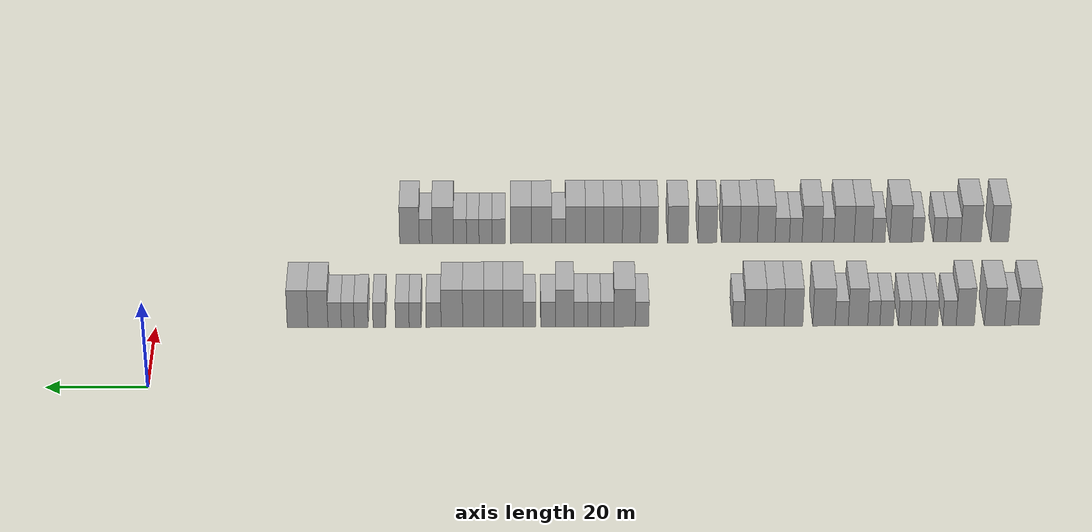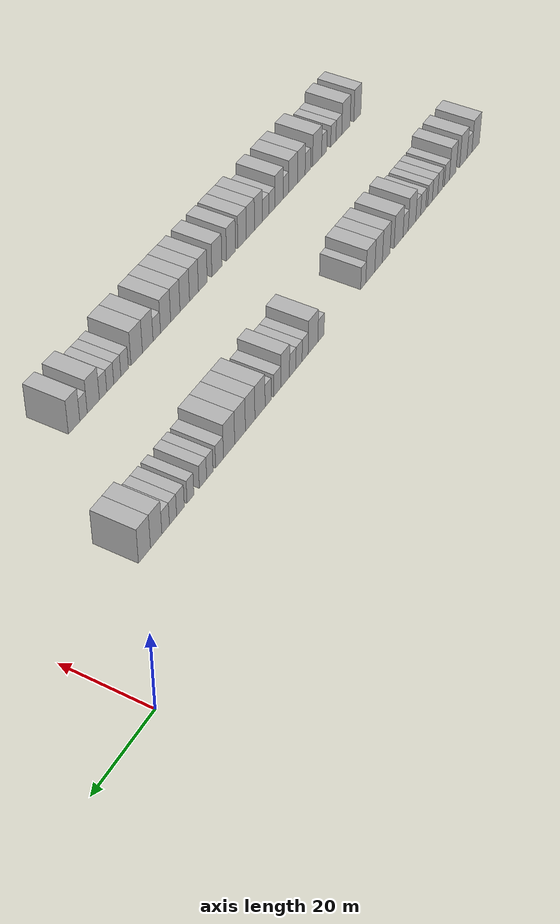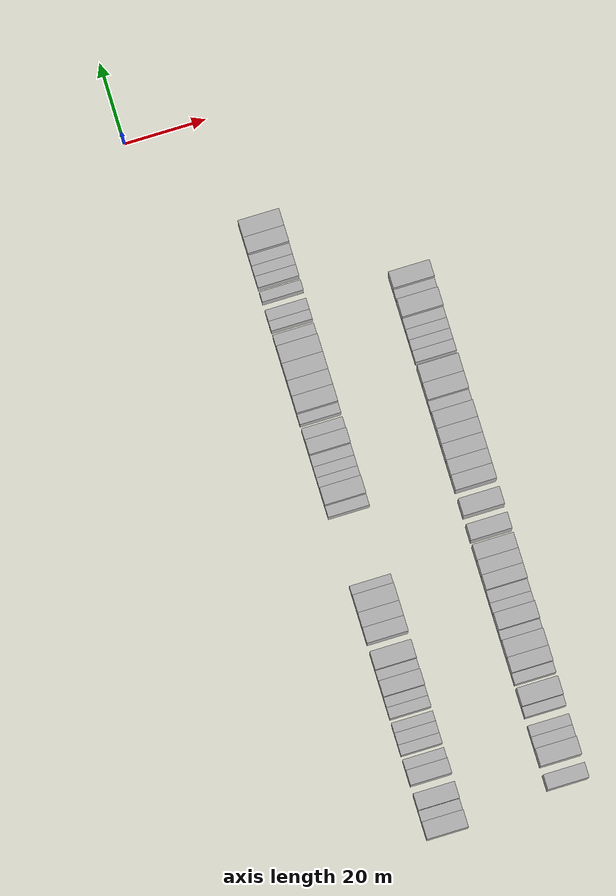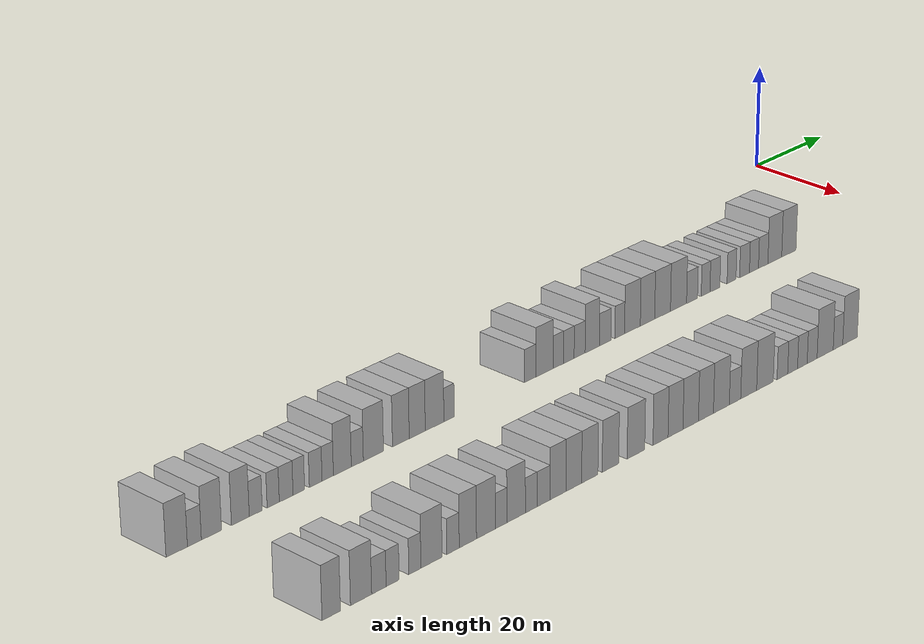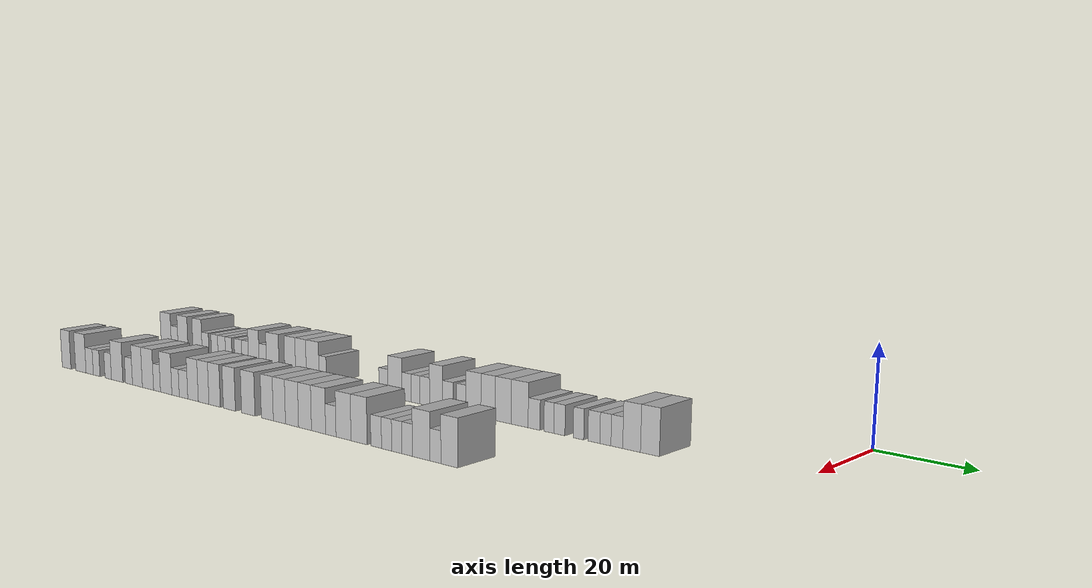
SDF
<sdf version="1.6">
 <world name="default">
  <model name="building_75">
   <static>1</static>
   <pose>25.0000 -174.7531 0 0.000000 0.000000 0.000000</pose>
   <link name="link">
    <pose>0 0 4.50 0 0 0</pose>
    <collision name="collision"><geometry><box><size>10.0000 4.2215 9.0000</size></box></geometry></collision>
    <visual name="visual">
     <cast_shadows>0</cast_shadows>
     <geometry><box><size>10.0000 4.2215 9.0000</size></box></geometry>
     <material>
      <script>
       <uri>model://HANNAS_wall/materials/scripts</uri>
       <uri>model://HANNAS_wall/materials/textures</uri>
       <name>vrc/HANNAS_wall</name>
      </script>
     </material>
    </visual>
   </link>
  </model>
  <model name="building_76">
   <static>1</static>
   <pose>25.0000 -171.2561 0 0.000000 0.000000 0.000000</pose>
   <link name="link">
    <pose>0 0 3.00 0 0 0</pose>
    <collision name="collision"><geometry><box><size>10.0000 2.7725 6.0000</size></box></geometry></collision>
    <visual name="visual">
     <cast_shadows>0</cast_shadows>
     <geometry><box><size>10.0000 2.7725 6.0000</size></box></geometry>
     <material>
      <script>
       <uri>model://HANNAS_wall/materials/scripts</uri>
       <uri>model://HANNAS_wall/materials/textures</uri>
       <name>vrc/HANNAS_wall</name>
      </script>
     </material>
    </visual>
   </link>
  </model>
  <model name="building_77">
   <static>1</static>
   <pose>25.0000 -167.8444 0 0.000000 0.000000 0.000000</pose>
   <link name="link">
    <pose>0 0 4.50 0 0 0</pose>
    <collision name="collision"><geometry><box><size>10.0000 4.0508 9.0000</size></box></geometry></collision>
    <visual name="visual">
     <cast_shadows>0</cast_shadows>
     <geometry><box><size>10.0000 4.0508 9.0000</size></box></geometry>
     <material>
      <script>
       <uri>model://HANNAS_wall/materials/scripts</uri>
       <uri>model://HANNAS_wall/materials/textures</uri>
       <name>vrc/HANNAS_wall</name>
      </script>
     </material>
    </visual>
   </link>
  </model>
  <model name="building_78">
   <static>1</static>
   <pose>25.0000 -161.9940 0 0.000000 0.000000 0.000000</pose>
   <link name="link">
    <pose>0 0 4.50 0 0 0</pose>
    <collision name="collision"><geometry><box><size>10.0000 3.6499 9.0000</size></box></geometry></collision>
    <visual name="visual">
     <cast_shadows>0</cast_shadows>
     <geometry><box><size>10.0000 3.6499 9.0000</size></box></geometry>
     <material>
      <script>
       <uri>model://HANNAS_wall/materials/scripts</uri>
       <uri>model://HANNAS_wall/materials/textures</uri>
       <name>vrc/HANNAS_wall</name>
      </script>
     </material>
    </visual>
   </link>
  </model>
  <model name="building_79">
   <static>1</static>
   <pose>25.0000 -158.8270 0 0.000000 0.000000 0.000000</pose>
   <link name="link">
    <pose>0 0 3.00 0 0 0</pose>
    <collision name="collision"><geometry><box><size>10.0000 2.6840 6.0000</size></box></geometry></collision>
    <visual name="visual">
     <cast_shadows>0</cast_shadows>
     <geometry><box><size>10.0000 2.6840 6.0000</size></box></geometry>
     <material>
      <script>
       <uri>model://HANNAS_wall/materials/scripts</uri>
       <uri>model://HANNAS_wall/materials/textures</uri>
       <name>vrc/HANNAS_wall</name>
      </script>
     </material>
    </visual>
   </link>
  </model>
  <model name="building_80">
   <static>1</static>
   <pose>25.0000 -155.2155 0 0.000000 0.000000 0.000000</pose>
   <link name="link">
    <pose>0 0 3.00 0 0 0</pose>
    <collision name="collision"><geometry><box><size>10.0000 2.5391 6.0000</size></box></geometry></collision>
    <visual name="visual">
     <cast_shadows>0</cast_shadows>
     <geometry><box><size>10.0000 2.5391 6.0000</size></box></geometry>
     <material>
      <script>
       <uri>model://HANNAS_wall/materials/scripts</uri>
       <uri>model://HANNAS_wall/materials/textures</uri>
       <name>vrc/HANNAS_wall</name>
      </script>
     </material>
    </visual>
   </link>
  </model>
  <model name="building_81">
   <static>1</static>
   <pose>25.0000 -152.4987 0 0.000000 0.000000 0.000000</pose>
   <link name="link">
    <pose>0 0 3.00 0 0 0</pose>
    <collision name="collision"><geometry><box><size>10.0000 2.8945 6.0000</size></box></geometry></collision>
    <visual name="visual">
     <cast_shadows>0</cast_shadows>
     <geometry><box><size>10.0000 2.8945 6.0000</size></box></geometry>
     <material>
      <script>
       <uri>model://HANNAS_wall/materials/scripts</uri>
       <uri>model://HANNAS_wall/materials/textures</uri>
       <name>vrc/HANNAS_wall</name>
      </script>
     </material>
    </visual>
   </link>
  </model>
  <model name="building_82">
   <static>1</static>
   <pose>25.0000 -149.8292 0 0.000000 0.000000 0.000000</pose>
   <link name="link">
    <pose>0 0 3.00 0 0 0</pose>
    <collision name="collision"><geometry><box><size>10.0000 2.4444 6.0000</size></box></geometry></collision>
    <visual name="visual">
     <cast_shadows>0</cast_shadows>
     <geometry><box><size>10.0000 2.4444 6.0000</size></box></geometry>
     <material>
      <script>
       <uri>model://HANNAS_wall/materials/scripts</uri>
       <uri>model://HANNAS_wall/materials/textures</uri>
       <name>vrc/HANNAS_wall</name>
      </script>
     </material>
    </visual>
   </link>
  </model>
  <model name="building_83">
   <static>1</static>
   <pose>25.0000 -146.2449 0 0.000000 0.000000 0.000000</pose>
   <link name="link">
    <pose>0 0 3.00 0 0 0</pose>
    <collision name="collision"><geometry><box><size>10.0000 2.7243 6.0000</size></box></geometry></collision>
    <visual name="visual">
     <cast_shadows>0</cast_shadows>
     <geometry><box><size>10.0000 2.7243 6.0000</size></box></geometry>
     <material>
      <script>
       <uri>model://HANNAS_wall/materials/scripts</uri>
       <uri>model://HANNAS_wall/materials/textures</uri>
       <name>vrc/HANNAS_wall</name>
      </script>
     </material>
    </visual>
   </link>
  </model>
  <model name="building_84">
   <static>1</static>
   <pose>25.0000 -143.6635 0 0.000000 0.000000 0.000000</pose>
   <link name="link">
    <pose>0 0 3.00 0 0 0</pose>
    <collision name="collision"><geometry><box><size>10.0000 2.4385 6.0000</size></box></geometry></collision>
    <visual name="visual">
     <cast_shadows>0</cast_shadows>
     <geometry><box><size>10.0000 2.4385 6.0000</size></box></geometry>
     <material>
      <script>
       <uri>model://HANNAS_wall/materials/scripts</uri>
       <uri>model://HANNAS_wall/materials/textures</uri>
       <name>vrc/HANNAS_wall</name>
      </script>
     </material>
    </visual>
   </link>
  </model>
  <model name="building_85">
   <static>1</static>
   <pose>25.0000 -140.4999 0 0.000000 0.000000 0.000000</pose>
   <link name="link">
    <pose>0 0 4.50 0 0 0</pose>
    <collision name="collision"><geometry><box><size>10.0000 3.8888 9.0000</size></box></geometry></collision>
    <visual name="visual">
     <cast_shadows>0</cast_shadows>
     <geometry><box><size>10.0000 3.8888 9.0000</size></box></geometry>
     <material>
      <script>
       <uri>model://HANNAS_wall/materials/scripts</uri>
       <uri>model://HANNAS_wall/materials/textures</uri>
       <name>vrc/HANNAS_wall</name>
      </script>
     </material>
    </visual>
   </link>
  </model>
  <model name="building_86">
   <static>1</static>
   <pose>25.0000 -137.2381 0 0.000000 0.000000 0.000000</pose>
   <link name="link">
    <pose>0 0 3.00 0 0 0</pose>
    <collision name="collision"><geometry><box><size>10.0000 2.6348 6.0000</size></box></geometry></collision>
    <visual name="visual">
     <cast_shadows>0</cast_shadows>
     <geometry><box><size>10.0000 2.6348 6.0000</size></box></geometry>
     <material>
      <script>
       <uri>model://HANNAS_wall/materials/scripts</uri>
       <uri>model://HANNAS_wall/materials/textures</uri>
       <name>vrc/HANNAS_wall</name>
      </script>
     </material>
    </visual>
   </link>
  </model>
  <model name="building_87">
   <static>1</static>
   <pose>25.0000 -133.6891 0 0.000000 0.000000 0.000000</pose>
   <link name="link">
    <pose>0 0 4.50 0 0 0</pose>
    <collision name="collision"><geometry><box><size>10.0000 4.4630 9.0000</size></box></geometry></collision>
    <visual name="visual">
     <cast_shadows>0</cast_shadows>
     <geometry><box><size>10.0000 4.4630 9.0000</size></box></geometry>
     <material>
      <script>
       <uri>model://HANNAS_wall/materials/scripts</uri>
       <uri>model://HANNAS_wall/materials/textures</uri>
       <name>vrc/HANNAS_wall</name>
      </script>
     </material>
    </visual>
   </link>
  </model>
  <model name="building_88">
   <static>1</static>
   <pose>25.0000 -127.5737 0 0.000000 0.000000 0.000000</pose>
   <link name="link">
    <pose>0 0 4.50 0 0 0</pose>
    <collision name="collision"><geometry><box><size>10.0000 3.7678 9.0000</size></box></geometry></collision>
    <visual name="visual">
     <cast_shadows>0</cast_shadows>
     <geometry><box><size>10.0000 3.7678 9.0000</size></box></geometry>
     <material>
      <script>
       <uri>model://HANNAS_wall/materials/scripts</uri>
       <uri>model://HANNAS_wall/materials/textures</uri>
       <name>vrc/HANNAS_wall</name>
      </script>
     </material>
    </visual>
   </link>
  </model>
  <model name="building_89">
   <static>1</static>
   <pose>25.0000 -123.8648 0 0.000000 0.000000 0.000000</pose>
   <link name="link">
    <pose>0 0 4.50 0 0 0</pose>
    <collision name="collision"><geometry><box><size>10.0000 3.6499 9.0000</size></box></geometry></collision>
    <visual name="visual">
     <cast_shadows>0</cast_shadows>
     <geometry><box><size>10.0000 3.6499 9.0000</size></box></geometry>
     <material>
      <script>
       <uri>model://HANNAS_wall/materials/scripts</uri>
       <uri>model://HANNAS_wall/materials/textures</uri>
       <name>vrc/HANNAS_wall</name>
      </script>
     </material>
    </visual>
   </link>
  </model>
  <model name="building_90">
   <static>1</static>
   <pose>25.0000 -119.8966 0 0.000000 0.000000 0.000000</pose>
   <link name="link">
    <pose>0 0 4.50 0 0 0</pose>
    <collision name="collision"><geometry><box><size>10.0000 4.2866 9.0000</size></box></geometry></collision>
    <visual name="visual">
     <cast_shadows>0</cast_shadows>
     <geometry><box><size>10.0000 4.2866 9.0000</size></box></geometry>
     <material>
      <script>
       <uri>model://HANNAS_wall/materials/scripts</uri>
       <uri>model://HANNAS_wall/materials/textures</uri>
       <name>vrc/HANNAS_wall</name>
      </script>
     </material>
    </visual>
   </link>
  </model>
  <model name="building_91">
   <static>1</static>
   <pose>25.0000 -116.5508 0 0.000000 0.000000 0.000000</pose>
   <link name="link">
    <pose>0 0 3.00 0 0 0</pose>
    <collision name="collision"><geometry><box><size>10.0000 2.4049 6.0000</size></box></geometry></collision>
    <visual name="visual">
     <cast_shadows>0</cast_shadows>
     <geometry><box><size>10.0000 2.4049 6.0000</size></box></geometry>
     <material>
      <script>
       <uri>model://HANNAS_wall/materials/scripts</uri>
       <uri>model://HANNAS_wall/materials/textures</uri>
       <name>vrc/HANNAS_wall</name>
      </script>
     </material>
    </visual>
   </link>
  </model>
  <model name="building_92">
   <static>1</static>
   <pose>25.0000 -97.2535 0 0.000000 0.000000 0.000000</pose>
   <link name="link">
    <pose>0 0 3.00 0 0 0</pose>
    <collision name="collision"><geometry><box><size>10.0000 2.7299 6.0000</size></box></geometry></collision>
    <visual name="visual">
     <cast_shadows>0</cast_shadows>
     <geometry><box><size>10.0000 2.7299 6.0000</size></box></geometry>
     <material>
      <script>
       <uri>model://HANNAS_wall/materials/scripts</uri>
       <uri>model://HANNAS_wall/materials/textures</uri>
       <name>vrc/HANNAS_wall</name>
      </script>
     </material>
    </visual>
   </link>
  </model>
  <model name="building_93">
   <static>1</static>
   <pose>25.0000 -93.7518 0 0.000000 0.000000 0.000000</pose>
   <link name="link">
    <pose>0 0 4.50 0 0 0</pose>
    <collision name="collision"><geometry><box><size>10.0000 4.2735 9.0000</size></box></geometry></collision>
    <visual name="visual">
     <cast_shadows>0</cast_shadows>
     <geometry><box><size>10.0000 4.2735 9.0000</size></box></geometry>
     <material>
      <script>
       <uri>model://HANNAS_wall/materials/scripts</uri>
       <uri>model://HANNAS_wall/materials/textures</uri>
       <name>vrc/HANNAS_wall</name>
      </script>
     </material>
    </visual>
   </link>
  </model>
  <model name="building_94">
   <static>1</static>
   <pose>25.0000 -90.3007 0 0.000000 0.000000 0.000000</pose>
   <link name="link">
    <pose>0 0 3.00 0 0 0</pose>
    <collision name="collision"><geometry><box><size>10.0000 2.6286 6.0000</size></box></geometry></collision>
    <visual name="visual">
     <cast_shadows>0</cast_shadows>
     <geometry><box><size>10.0000 2.6286 6.0000</size></box></geometry>
     <material>
      <script>
       <uri>model://HANNAS_wall/materials/scripts</uri>
       <uri>model://HANNAS_wall/materials/textures</uri>
       <name>vrc/HANNAS_wall</name>
      </script>
     </material>
    </visual>
   </link>
  </model>
  <model name="building_95">
   <static>1</static>
   <pose>25.0000 -87.6809 0 0.000000 0.000000 0.000000</pose>
   <link name="link">
    <pose>0 0 3.00 0 0 0</pose>
    <collision name="collision"><geometry><box><size>10.0000 2.6110 6.0000</size></box></geometry></collision>
    <visual name="visual">
     <cast_shadows>0</cast_shadows>
     <geometry><box><size>10.0000 2.6110 6.0000</size></box></geometry>
     <material>
      <script>
       <uri>model://HANNAS_wall/materials/scripts</uri>
       <uri>model://HANNAS_wall/materials/textures</uri>
       <name>vrc/HANNAS_wall</name>
      </script>
     </material>
    </visual>
   </link>
  </model>
  <model name="building_96">
   <static>1</static>
   <pose>25.0000 -84.9924 0 0.000000 0.000000 0.000000</pose>
   <link name="link">
    <pose>0 0 3.00 0 0 0</pose>
    <collision name="collision"><geometry><box><size>10.0000 2.7659 6.0000</size></box></geometry></collision>
    <visual name="visual">
     <cast_shadows>0</cast_shadows>
     <geometry><box><size>10.0000 2.7659 6.0000</size></box></geometry>
     <material>
      <script>
       <uri>model://HANNAS_wall/materials/scripts</uri>
       <uri>model://HANNAS_wall/materials/textures</uri>
       <name>vrc/HANNAS_wall</name>
      </script>
     </material>
    </visual>
   </link>
  </model>
  <model name="building_97">
   <static>1</static>
   <pose>25.0000 -81.7925 0 0.000000 0.000000 0.000000</pose>
   <link name="link">
    <pose>0 0 4.50 0 0 0</pose>
    <collision name="collision"><geometry><box><size>10.0000 3.6341 9.0000</size></box></geometry></collision>
    <visual name="visual">
     <cast_shadows>0</cast_shadows>
     <geometry><box><size>10.0000 3.6341 9.0000</size></box></geometry>
     <material>
      <script>
       <uri>model://HANNAS_wall/materials/scripts</uri>
       <uri>model://HANNAS_wall/materials/textures</uri>
       <name>vrc/HANNAS_wall</name>
      </script>
     </material>
    </visual>
   </link>
  </model>
  <model name="building_98">
   <static>1</static>
   <pose>25.0000 -78.4765 0 0.000000 0.000000 0.000000</pose>
   <link name="link">
    <pose>0 0 3.00 0 0 0</pose>
    <collision name="collision"><geometry><box><size>10.0000 2.9978 6.0000</size></box></geometry></collision>
    <visual name="visual">
     <cast_shadows>0</cast_shadows>
     <geometry><box><size>10.0000 2.9978 6.0000</size></box></geometry>
     <material>
      <script>
       <uri>model://HANNAS_wall/materials/scripts</uri>
       <uri>model://HANNAS_wall/materials/textures</uri>
       <name>vrc/HANNAS_wall</name>
      </script>
     </material>
    </visual>
   </link>
  </model>
  <model name="building_99">
   <static>1</static>
   <pose>25.0000 -74.7331 0 0.000000 0.000000 0.000000</pose>
   <link name="link">
    <pose>0 0 3.00 0 0 0</pose>
    <collision name="collision"><geometry><box><size>10.0000 2.4889 6.0000</size></box></geometry></collision>
    <visual name="visual">
     <cast_shadows>0</cast_shadows>
     <geometry><box><size>10.0000 2.4889 6.0000</size></box></geometry>
     <material>
      <script>
       <uri>model://HANNAS_wall/materials/scripts</uri>
       <uri>model://HANNAS_wall/materials/textures</uri>
       <name>vrc/HANNAS_wall</name>
      </script>
     </material>
    </visual>
   </link>
  </model>
  <model name="building_100">
   <static>1</static>
   <pose>25.0000 -71.4349 0 0.000000 0.000000 0.000000</pose>
   <link name="link">
    <pose>0 0 4.50 0 0 0</pose>
    <collision name="collision"><geometry><box><size>10.0000 4.1075 9.0000</size></box></geometry></collision>
    <visual name="visual">
     <cast_shadows>0</cast_shadows>
     <geometry><box><size>10.0000 4.1075 9.0000</size></box></geometry>
     <material>
      <script>
       <uri>model://HANNAS_wall/materials/scripts</uri>
       <uri>model://HANNAS_wall/materials/textures</uri>
       <name>vrc/HANNAS_wall</name>
      </script>
     </material>
    </visual>
   </link>
  </model>
  <model name="building_101">
   <static>1</static>
   <pose>25.0000 -67.4853 0 0.000000 0.000000 0.000000</pose>
   <link name="link">
    <pose>0 0 4.50 0 0 0</pose>
    <collision name="collision"><geometry><box><size>10.0000 3.7918 9.0000</size></box></geometry></collision>
    <visual name="visual">
     <cast_shadows>0</cast_shadows>
     <geometry><box><size>10.0000 3.7918 9.0000</size></box></geometry>
     <material>
      <script>
       <uri>model://HANNAS_wall/materials/scripts</uri>
       <uri>model://HANNAS_wall/materials/textures</uri>
       <name>vrc/HANNAS_wall</name>
      </script>
     </material>
    </visual>
   </link>
  </model>
  <model name="building_102">
   <static>1</static>
   <pose>25.0000 -63.4863 0 0.000000 0.000000 0.000000</pose>
   <link name="link">
    <pose>0 0 4.50 0 0 0</pose>
    <collision name="collision"><geometry><box><size>10.0000 4.2061 9.0000</size></box></geometry></collision>
    <visual name="visual">
     <cast_shadows>0</cast_shadows>
     <geometry><box><size>10.0000 4.2061 9.0000</size></box></geometry>
     <material>
      <script>
       <uri>model://HANNAS_wall/materials/scripts</uri>
       <uri>model://HANNAS_wall/materials/textures</uri>
       <name>vrc/HANNAS_wall</name>
      </script>
     </material>
    </visual>
   </link>
  </model>
  <model name="building_103">
   <static>1</static>
   <pose>25.0000 -59.2171 0 0.000000 0.000000 0.000000</pose>
   <link name="link">
    <pose>0 0 4.50 0 0 0</pose>
    <collision name="collision"><geometry><box><size>10.0000 4.3322 9.0000</size></box></geometry></collision>
    <visual name="visual">
     <cast_shadows>0</cast_shadows>
     <geometry><box><size>10.0000 4.3322 9.0000</size></box></geometry>
     <material>
      <script>
       <uri>model://HANNAS_wall/materials/scripts</uri>
       <uri>model://HANNAS_wall/materials/textures</uri>
       <name>vrc/HANNAS_wall</name>
      </script>
     </material>
    </visual>
   </link>
  </model>
  <model name="building_104">
   <static>1</static>
   <pose>25.0000 -55.5580 0 0.000000 0.000000 0.000000</pose>
   <link name="link">
    <pose>0 0 3.00 0 0 0</pose>
    <collision name="collision"><geometry><box><size>10.0000 2.9861 6.0000</size></box></geometry></collision>
    <visual name="visual">
     <cast_shadows>0</cast_shadows>
     <geometry><box><size>10.0000 2.9861 6.0000</size></box></geometry>
     <material>
      <script>
       <uri>model://HANNAS_wall/materials/scripts</uri>
       <uri>model://HANNAS_wall/materials/textures</uri>
       <name>vrc/HANNAS_wall</name>
      </script>
     </material>
    </visual>
   </link>
  </model>
  <model name="building_105">
   <static>1</static>
   <pose>25.0000 -51.8630 0 0.000000 0.000000 0.000000</pose>
   <link name="link">
    <pose>0 0 3.00 0 0 0</pose>
    <collision name="collision"><geometry><box><size>10.0000 2.4037 6.0000</size></box></geometry></collision>
    <visual name="visual">
     <cast_shadows>0</cast_shadows>
     <geometry><box><size>10.0000 2.4037 6.0000</size></box></geometry>
     <material>
      <script>
       <uri>model://HANNAS_wall/materials/scripts</uri>
       <uri>model://HANNAS_wall/materials/textures</uri>
       <name>vrc/HANNAS_wall</name>
      </script>
     </material>
    </visual>
   </link>
  </model>
  <model name="building_106">
   <static>1</static>
   <pose>25.0000 -49.2983 0 0.000000 0.000000 0.000000</pose>
   <link name="link">
    <pose>0 0 3.00 0 0 0</pose>
    <collision name="collision"><geometry><box><size>10.0000 2.7257 6.0000</size></box></geometry></collision>
    <visual name="visual">
     <cast_shadows>0</cast_shadows>
     <geometry><box><size>10.0000 2.7257 6.0000</size></box></geometry>
     <material>
      <script>
       <uri>model://HANNAS_wall/materials/scripts</uri>
       <uri>model://HANNAS_wall/materials/textures</uri>
       <name>vrc/HANNAS_wall</name>
      </script>
     </material>
    </visual>
   </link>
  </model>
  <model name="building_107">
   <static>1</static>
   <pose>25.0000 -44.6865 0 0.000000 0.000000 0.000000</pose>
   <link name="link">
    <pose>0 0 3.00 0 0 0</pose>
    <collision name="collision"><geometry><box><size>10.0000 2.4978 6.0000</size></box></geometry></collision>
    <visual name="visual">
     <cast_shadows>0</cast_shadows>
     <geometry><box><size>10.0000 2.4978 6.0000</size></box></geometry>
     <material>
      <script>
       <uri>model://HANNAS_wall/materials/scripts</uri>
       <uri>model://HANNAS_wall/materials/textures</uri>
       <name>vrc/HANNAS_wall</name>
      </script>
     </material>
    </visual>
   </link>
  </model>
  <model name="building_108">
   <static>1</static>
   <pose>25.0000 -41.0462 0 0.000000 0.000000 0.000000</pose>
   <link name="link">
    <pose>0 0 3.00 0 0 0</pose>
    <collision name="collision"><geometry><box><size>10.0000 2.7828 6.0000</size></box></geometry></collision>
    <visual name="visual">
     <cast_shadows>0</cast_shadows>
     <geometry><box><size>10.0000 2.7828 6.0000</size></box></geometry>
     <material>
      <script>
       <uri>model://HANNAS_wall/materials/scripts</uri>
       <uri>model://HANNAS_wall/materials/textures</uri>
       <name>vrc/HANNAS_wall</name>
      </script>
     </material>
    </visual>
   </link>
  </model>
  <model name="building_109">
   <static>1</static>
   <pose>25.0000 -38.3738 0 0.000000 0.000000 0.000000</pose>
   <link name="link">
    <pose>0 0 3.00 0 0 0</pose>
    <collision name="collision"><geometry><box><size>10.0000 2.5620 6.0000</size></box></geometry></collision>
    <visual name="visual">
     <cast_shadows>0</cast_shadows>
     <geometry><box><size>10.0000 2.5620 6.0000</size></box></geometry>
     <material>
      <script>
       <uri>model://HANNAS_wall/materials/scripts</uri>
       <uri>model://HANNAS_wall/materials/textures</uri>
       <name>vrc/HANNAS_wall</name>
      </script>
     </material>
    </visual>
   </link>
  </model>
  <model name="building_110">
   <static>1</static>
   <pose>25.0000 -35.7541 0 0.000000 0.000000 0.000000</pose>
   <link name="link">
    <pose>0 0 3.00 0 0 0</pose>
    <collision name="collision"><geometry><box><size>10.0000 2.6775 6.0000</size></box></geometry></collision>
    <visual name="visual">
     <cast_shadows>0</cast_shadows>
     <geometry><box><size>10.0000 2.6775 6.0000</size></box></geometry>
     <material>
      <script>
       <uri>model://HANNAS_wall/materials/scripts</uri>
       <uri>model://HANNAS_wall/materials/textures</uri>
       <name>vrc/HANNAS_wall</name>
      </script>
     </material>
    </visual>
   </link>
  </model>
  <model name="building_111">
   <static>1</static>
   <pose>25.0000 -32.4270 0 0.000000 0.000000 0.000000</pose>
   <link name="link">
    <pose>0 0 4.50 0 0 0</pose>
    <collision name="collision"><geometry><box><size>10.0000 3.9765 9.0000</size></box></geometry></collision>
    <visual name="visual">
     <cast_shadows>0</cast_shadows>
     <geometry><box><size>10.0000 3.9765 9.0000</size></box></geometry>
     <material>
      <script>
       <uri>model://HANNAS_wall/materials/scripts</uri>
       <uri>model://HANNAS_wall/materials/textures</uri>
       <name>vrc/HANNAS_wall</name>
      </script>
     </material>
    </visual>
   </link>
  </model>
  <model name="building_112">
   <static>1</static>
   <pose>25.0000 -28.3598 0 0.000000 0.000000 0.000000</pose>
   <link name="link">
    <pose>0 0 4.50 0 0 0</pose>
    <collision name="collision"><geometry><box><size>10.0000 4.1580 9.0000</size></box></geometry></collision>
    <visual name="visual">
     <cast_shadows>0</cast_shadows>
     <geometry><box><size>10.0000 4.1580 9.0000</size></box></geometry>
     <material>
      <script>
       <uri>model://HANNAS_wall/materials/scripts</uri>
       <uri>model://HANNAS_wall/materials/textures</uri>
       <name>vrc/HANNAS_wall</name>
      </script>
     </material>
    </visual>
   </link>
  </model>
  <model name="building_302">
   <static>1</static>
   <pose>55.0000 -172.1929 0 0.000000 0.000000 0.000000</pose>
   <link name="link">
    <pose>0 0 4.50 0 0 0</pose>
    <collision name="collision"><geometry><box><size>10.0000 3.6647 9.0000</size></box></geometry></collision>
    <visual name="visual">
     <cast_shadows>0</cast_shadows>
     <geometry><box><size>10.0000 3.6647 9.0000</size></box></geometry>
     <material>
      <script>
       <uri>model://HANNAS_wall/materials/scripts</uri>
       <uri>model://HANNAS_wall/materials/textures</uri>
       <name>vrc/HANNAS_wall</name>
      </script>
     </material>
    </visual>
   </link>
  </model>
  <model name="building_303">
   <static>1</static>
   <pose>55.0000 -166.2190 0 0.000000 0.000000 0.000000</pose>
   <link name="link">
    <pose>0 0 4.50 0 0 0</pose>
    <collision name="collision"><geometry><box><size>10.0000 4.2831 9.0000</size></box></geometry></collision>
    <visual name="visual">
     <cast_shadows>0</cast_shadows>
     <geometry><box><size>10.0000 4.2831 9.0000</size></box></geometry>
     <material>
      <script>
       <uri>model://HANNAS_wall/materials/scripts</uri>
       <uri>model://HANNAS_wall/materials/textures</uri>
       <name>vrc/HANNAS_wall</name>
      </script>
     </material>
    </visual>
   </link>
  </model>
  <model name="building_304">
   <static>1</static>
   <pose>55.0000 -162.6008 0 0.000000 0.000000 0.000000</pose>
   <link name="link">
    <pose>0 0 3.00 0 0 0</pose>
    <collision name="collision"><geometry><box><size>10.0000 2.9534 6.0000</size></box></geometry></collision>
    <visual name="visual">
     <cast_shadows>0</cast_shadows>
     <geometry><box><size>10.0000 2.9534 6.0000</size></box></geometry>
     <material>
      <script>
       <uri>model://HANNAS_wall/materials/scripts</uri>
       <uri>model://HANNAS_wall/materials/textures</uri>
       <name>vrc/HANNAS_wall</name>
      </script>
     </material>
    </visual>
   </link>
  </model>
  <model name="building_305">
   <static>1</static>
   <pose>55.0000 -159.7799 0 0.000000 0.000000 0.000000</pose>
   <link name="link">
    <pose>0 0 3.00 0 0 0</pose>
    <collision name="collision"><geometry><box><size>10.0000 2.6885 6.0000</size></box></geometry></collision>
    <visual name="visual">
     <cast_shadows>0</cast_shadows>
     <geometry><box><size>10.0000 2.6885 6.0000</size></box></geometry>
     <material>
      <script>
       <uri>model://HANNAS_wall/materials/scripts</uri>
       <uri>model://HANNAS_wall/materials/textures</uri>
       <name>vrc/HANNAS_wall</name>
      </script>
     </material>
    </visual>
   </link>
  </model>
  <model name="building_306">
   <static>1</static>
   <pose>55.0000 -155.1646 0 0.000000 0.000000 0.000000</pose>
   <link name="link">
    <pose>0 0 3.00 0 0 0</pose>
    <collision name="collision"><geometry><box><size>10.0000 2.5419 6.0000</size></box></geometry></collision>
    <visual name="visual">
     <cast_shadows>0</cast_shadows>
     <geometry><box><size>10.0000 2.5419 6.0000</size></box></geometry>
     <material>
      <script>
       <uri>model://HANNAS_wall/materials/scripts</uri>
       <uri>model://HANNAS_wall/materials/textures</uri>
       <name>vrc/HANNAS_wall</name>
      </script>
     </material>
    </visual>
   </link>
  </model>
  <model name="building_307">
   <static>1</static>
   <pose>55.0000 -151.6627 0 0.000000 0.000000 0.000000</pose>
   <link name="link">
    <pose>0 0 4.50 0 0 0</pose>
    <collision name="collision"><geometry><box><size>10.0000 4.4619 9.0000</size></box></geometry></collision>
    <visual name="visual">
     <cast_shadows>0</cast_shadows>
     <geometry><box><size>10.0000 4.4619 9.0000</size></box></geometry>
     <material>
      <script>
       <uri>model://HANNAS_wall/materials/scripts</uri>
       <uri>model://HANNAS_wall/materials/textures</uri>
       <name>vrc/HANNAS_wall</name>
      </script>
     </material>
    </visual>
   </link>
  </model>
  <model name="building_308">
   <static>1</static>
   <pose>55.0000 -147.0984 0 0.000000 0.000000 0.000000</pose>
   <link name="link">
    <pose>0 0 3.00 0 0 0</pose>
    <collision name="collision"><geometry><box><size>10.0000 2.6666 6.0000</size></box></geometry></collision>
    <visual name="visual">
     <cast_shadows>0</cast_shadows>
     <geometry><box><size>10.0000 2.6666 6.0000</size></box></geometry>
     <material>
      <script>
       <uri>model://HANNAS_wall/materials/scripts</uri>
       <uri>model://HANNAS_wall/materials/textures</uri>
       <name>vrc/HANNAS_wall</name>
      </script>
     </material>
    </visual>
   </link>
  </model>
  <model name="building_309">
   <static>1</static>
   <pose>55.0000 -143.9009 0 0.000000 0.000000 0.000000</pose>
   <link name="link">
    <pose>0 0 4.50 0 0 0</pose>
    <collision name="collision"><geometry><box><size>10.0000 3.7285 9.0000</size></box></geometry></collision>
    <visual name="visual">
     <cast_shadows>0</cast_shadows>
     <geometry><box><size>10.0000 3.7285 9.0000</size></box></geometry>
     <material>
      <script>
       <uri>model://HANNAS_wall/materials/scripts</uri>
       <uri>model://HANNAS_wall/materials/textures</uri>
       <name>vrc/HANNAS_wall</name>
      </script>
     </material>
    </visual>
   </link>
  </model>
  <model name="building_310">
   <static>1</static>
   <pose>55.0000 -139.9548 0 0.000000 0.000000 0.000000</pose>
   <link name="link">
    <pose>0 0 4.50 0 0 0</pose>
    <collision name="collision"><geometry><box><size>10.0000 4.1636 9.0000</size></box></geometry></collision>
    <visual name="visual">
     <cast_shadows>0</cast_shadows>
     <geometry><box><size>10.0000 4.1636 9.0000</size></box></geometry>
     <material>
      <script>
       <uri>model://HANNAS_wall/materials/scripts</uri>
       <uri>model://HANNAS_wall/materials/textures</uri>
       <name>vrc/HANNAS_wall</name>
      </script>
     </material>
    </visual>
   </link>
  </model>
  <model name="building_311">
   <static>1</static>
   <pose>55.0000 -136.6278 0 0.000000 0.000000 0.000000</pose>
   <link name="link">
    <pose>0 0 3.00 0 0 0</pose>
    <collision name="collision"><geometry><box><size>10.0000 2.4904 6.0000</size></box></geometry></collision>
    <visual name="visual">
     <cast_shadows>0</cast_shadows>
     <geometry><box><size>10.0000 2.4904 6.0000</size></box></geometry>
     <material>
      <script>
       <uri>model://HANNAS_wall/materials/scripts</uri>
       <uri>model://HANNAS_wall/materials/textures</uri>
       <name>vrc/HANNAS_wall</name>
      </script>
     </material>
    </visual>
   </link>
  </model>
  <model name="building_312">
   <static>1</static>
   <pose>55.0000 -133.3214 0 0.000000 0.000000 0.000000</pose>
   <link name="link">
    <pose>0 0 4.50 0 0 0</pose>
    <collision name="collision"><geometry><box><size>10.0000 4.1224 9.0000</size></box></geometry></collision>
    <visual name="visual">
     <cast_shadows>0</cast_shadows>
     <geometry><box><size>10.0000 4.1224 9.0000</size></box></geometry>
     <material>
      <script>
       <uri>model://HANNAS_wall/materials/scripts</uri>
       <uri>model://HANNAS_wall/materials/textures</uri>
       <name>vrc/HANNAS_wall</name>
      </script>
     </material>
    </visual>
   </link>
  </model>
  <model name="building_313">
   <static>1</static>
   <pose>55.0000 -129.9581 0 0.000000 0.000000 0.000000</pose>
   <link name="link">
    <pose>0 0 3.00 0 0 0</pose>
    <collision name="collision"><geometry><box><size>10.0000 2.6042 6.0000</size></box></geometry></collision>
    <visual name="visual">
     <cast_shadows>0</cast_shadows>
     <geometry><box><size>10.0000 2.6042 6.0000</size></box></geometry>
     <material>
      <script>
       <uri>model://HANNAS_wall/materials/scripts</uri>
       <uri>model://HANNAS_wall/materials/textures</uri>
       <name>vrc/HANNAS_wall</name>
      </script>
     </material>
    </visual>
   </link>
  </model>
  <model name="building_314">
   <static>1</static>
   <pose>55.0000 -127.1567 0 0.000000 0.000000 0.000000</pose>
   <link name="link">
    <pose>0 0 3.00 0 0 0</pose>
    <collision name="collision"><geometry><box><size>10.0000 2.9985 6.0000</size></box></geometry></collision>
    <visual name="visual">
     <cast_shadows>0</cast_shadows>
     <geometry><box><size>10.0000 2.9985 6.0000</size></box></geometry>
     <material>
      <script>
       <uri>model://HANNAS_wall/materials/scripts</uri>
       <uri>model://HANNAS_wall/materials/textures</uri>
       <name>vrc/HANNAS_wall</name>
      </script>
     </material>
    </visual>
   </link>
  </model>
  <model name="building_315">
   <static>1</static>
   <pose>55.0000 -123.8409 0 0.000000 0.000000 0.000000</pose>
   <link name="link">
    <pose>0 0 4.50 0 0 0</pose>
    <collision name="collision"><geometry><box><size>10.0000 3.6333 9.0000</size></box></geometry></collision>
    <visual name="visual">
     <cast_shadows>0</cast_shadows>
     <geometry><box><size>10.0000 3.6333 9.0000</size></box></geometry>
     <material>
      <script>
       <uri>model://HANNAS_wall/materials/scripts</uri>
       <uri>model://HANNAS_wall/materials/textures</uri>
       <name>vrc/HANNAS_wall</name>
      </script>
     </material>
    </visual>
   </link>
  </model>
  <model name="building_316">
   <static>1</static>
   <pose>55.0000 -120.2149 0 0.000000 0.000000 0.000000</pose>
   <link name="link">
    <pose>0 0 4.50 0 0 0</pose>
    <collision name="collision"><geometry><box><size>10.0000 3.6186 9.0000</size></box></geometry></collision>
    <visual name="visual">
     <cast_shadows>0</cast_shadows>
     <geometry><box><size>10.0000 3.6186 9.0000</size></box></geometry>
     <material>
      <script>
       <uri>model://HANNAS_wall/materials/scripts</uri>
       <uri>model://HANNAS_wall/materials/textures</uri>
       <name>vrc/HANNAS_wall</name>
      </script>
     </material>
    </visual>
   </link>
  </model>
  <model name="building_317">
   <static>1</static>
   <pose>55.0000 -116.5058 0 0.000000 0.000000 0.000000</pose>
   <link name="link">
    <pose>0 0 4.50 0 0 0</pose>
    <collision name="collision"><geometry><box><size>10.0000 3.7996 9.0000</size></box></geometry></collision>
    <visual name="visual">
     <cast_shadows>0</cast_shadows>
     <geometry><box><size>10.0000 3.7996 9.0000</size></box></geometry>
     <material>
      <script>
       <uri>model://HANNAS_wall/materials/scripts</uri>
       <uri>model://HANNAS_wall/materials/textures</uri>
       <name>vrc/HANNAS_wall</name>
      </script>
     </material>
    </visual>
   </link>
  </model>
  <model name="building_318">
   <static>1</static>
   <pose>55.0000 -111.6453 0 0.000000 0.000000 0.000000</pose>
   <link name="link">
    <pose>0 0 4.50 0 0 0</pose>
    <collision name="collision"><geometry><box><size>10.0000 3.9215 9.0000</size></box></geometry></collision>
    <visual name="visual">
     <cast_shadows>0</cast_shadows>
     <geometry><box><size>10.0000 3.9215 9.0000</size></box></geometry>
     <material>
      <script>
       <uri>model://HANNAS_wall/materials/scripts</uri>
       <uri>model://HANNAS_wall/materials/textures</uri>
       <name>vrc/HANNAS_wall</name>
      </script>
     </material>
    </visual>
   </link>
  </model>
  <model name="building_319">
   <static>1</static>
   <pose>55.0000 -105.5587 0 0.000000 0.000000 0.000000</pose>
   <link name="link">
    <pose>0 0 4.50 0 0 0</pose>
    <collision name="collision"><geometry><box><size>10.0000 4.2516 9.0000</size></box></geometry></collision>
    <visual name="visual">
     <cast_shadows>0</cast_shadows>
     <geometry><box><size>10.0000 4.2516 9.0000</size></box></geometry>
     <material>
      <script>
       <uri>model://HANNAS_wall/materials/scripts</uri>
       <uri>model://HANNAS_wall/materials/textures</uri>
       <name>vrc/HANNAS_wall</name>
      </script>
     </material>
    </visual>
   </link>
  </model>
  <model name="building_320">
   <static>1</static>
   <pose>55.0000 -99.5891 0 0.000000 0.000000 0.000000</pose>
   <link name="link">
    <pose>0 0 4.50 0 0 0</pose>
    <collision name="collision"><geometry><box><size>10.0000 3.6876 9.0000</size></box></geometry></collision>
    <visual name="visual">
     <cast_shadows>0</cast_shadows>
     <geometry><box><size>10.0000 3.6876 9.0000</size></box></geometry>
     <material>
      <script>
       <uri>model://HANNAS_wall/materials/scripts</uri>
       <uri>model://HANNAS_wall/materials/textures</uri>
       <name>vrc/HANNAS_wall</name>
      </script>
     </material>
    </visual>
   </link>
  </model>
  <model name="building_321">
   <static>1</static>
   <pose>55.0000 -95.9028 0 0.000000 0.000000 0.000000</pose>
   <link name="link">
    <pose>0 0 4.50 0 0 0</pose>
    <collision name="collision"><geometry><box><size>10.0000 3.6851 9.0000</size></box></geometry></collision>
    <visual name="visual">
     <cast_shadows>0</cast_shadows>
     <geometry><box><size>10.0000 3.6851 9.0000</size></box></geometry>
     <material>
      <script>
       <uri>model://HANNAS_wall/materials/scripts</uri>
       <uri>model://HANNAS_wall/materials/textures</uri>
       <name>vrc/HANNAS_wall</name>
      </script>
     </material>
    </visual>
   </link>
  </model>
  <model name="building_322">
   <static>1</static>
   <pose>55.0000 -92.1186 0 0.000000 0.000000 0.000000</pose>
   <link name="link">
    <pose>0 0 4.50 0 0 0</pose>
    <collision name="collision"><geometry><box><size>10.0000 3.8832 9.0000</size></box></geometry></collision>
    <visual name="visual">
     <cast_shadows>0</cast_shadows>
     <geometry><box><size>10.0000 3.8832 9.0000</size></box></geometry>
     <material>
      <script>
       <uri>model://HANNAS_wall/materials/scripts</uri>
       <uri>model://HANNAS_wall/materials/textures</uri>
       <name>vrc/HANNAS_wall</name>
      </script>
     </material>
    </visual>
   </link>
  </model>
  <model name="building_323">
   <static>1</static>
   <pose>55.0000 -88.2860 0 0.000000 0.000000 0.000000</pose>
   <link name="link">
    <pose>0 0 4.50 0 0 0</pose>
    <collision name="collision"><geometry><box><size>10.0000 3.7820 9.0000</size></box></geometry></collision>
    <visual name="visual">
     <cast_shadows>0</cast_shadows>
     <geometry><box><size>10.0000 3.7820 9.0000</size></box></geometry>
     <material>
      <script>
       <uri>model://HANNAS_wall/materials/scripts</uri>
       <uri>model://HANNAS_wall/materials/textures</uri>
       <name>vrc/HANNAS_wall</name>
      </script>
     </material>
    </visual>
   </link>
  </model>
  <model name="building_324">
   <static>1</static>
   <pose>55.0000 -84.3669 0 0.000000 0.000000 0.000000</pose>
   <link name="link">
    <pose>0 0 4.50 0 0 0</pose>
    <collision name="collision"><geometry><box><size>10.0000 4.0561 9.0000</size></box></geometry></collision>
    <visual name="visual">
     <cast_shadows>0</cast_shadows>
     <geometry><box><size>10.0000 4.0561 9.0000</size></box></geometry>
     <material>
      <script>
       <uri>model://HANNAS_wall/materials/scripts</uri>
       <uri>model://HANNAS_wall/materials/textures</uri>
       <name>vrc/HANNAS_wall</name>
      </script>
     </material>
    </visual>
   </link>
  </model>
  <model name="building_325">
   <static>1</static>
   <pose>55.0000 -80.8723 0 0.000000 0.000000 0.000000</pose>
   <link name="link">
    <pose>0 0 3.00 0 0 0</pose>
    <collision name="collision"><geometry><box><size>10.0000 2.9331 6.0000</size></box></geometry></collision>
    <visual name="visual">
     <cast_shadows>0</cast_shadows>
     <geometry><box><size>10.0000 2.9331 6.0000</size></box></geometry>
     <material>
      <script>
       <uri>model://HANNAS_wall/materials/scripts</uri>
       <uri>model://HANNAS_wall/materials/textures</uri>
       <name>vrc/HANNAS_wall</name>
      </script>
     </material>
    </visual>
   </link>
  </model>
  <model name="building_326">
   <static>1</static>
   <pose>55.0000 -77.3339 0 0.000000 0.000000 0.000000</pose>
   <link name="link">
    <pose>0 0 4.50 0 0 0</pose>
    <collision name="collision"><geometry><box><size>10.0000 4.1436 9.0000</size></box></geometry></collision>
    <visual name="visual">
     <cast_shadows>0</cast_shadows>
     <geometry><box><size>10.0000 4.1436 9.0000</size></box></geometry>
     <material>
      <script>
       <uri>model://HANNAS_wall/materials/scripts</uri>
       <uri>model://HANNAS_wall/materials/textures</uri>
       <name>vrc/HANNAS_wall</name>
      </script>
     </material>
    </visual>
   </link>
  </model>
  <model name="building_327">
   <static>1</static>
   <pose>55.0000 -73.0757 0 0.000000 0.000000 0.000000</pose>
   <link name="link">
    <pose>0 0 4.50 0 0 0</pose>
    <collision name="collision"><geometry><box><size>10.0000 4.3728 9.0000</size></box></geometry></collision>
    <visual name="visual">
     <cast_shadows>0</cast_shadows>
     <geometry><box><size>10.0000 4.3728 9.0000</size></box></geometry>
     <material>
      <script>
       <uri>model://HANNAS_wall/materials/scripts</uri>
       <uri>model://HANNAS_wall/materials/textures</uri>
       <name>vrc/HANNAS_wall</name>
      </script>
     </material>
    </visual>
   </link>
  </model>
  <model name="building_328">
   <static>1</static>
   <pose>55.0000 -68.4760 0 0.000000 0.000000 0.000000</pose>
   <link name="link">
    <pose>0 0 3.00 0 0 0</pose>
    <collision name="collision"><geometry><box><size>10.0000 2.8266 6.0000</size></box></geometry></collision>
    <visual name="visual">
     <cast_shadows>0</cast_shadows>
     <geometry><box><size>10.0000 2.8266 6.0000</size></box></geometry>
     <material>
      <script>
       <uri>model://HANNAS_wall/materials/scripts</uri>
       <uri>model://HANNAS_wall/materials/textures</uri>
       <name>vrc/HANNAS_wall</name>
      </script>
     </material>
    </visual>
   </link>
  </model>
  <model name="building_329">
   <static>1</static>
   <pose>55.0000 -65.7358 0 0.000000 0.000000 0.000000</pose>
   <link name="link">
    <pose>0 0 3.00 0 0 0</pose>
    <collision name="collision"><geometry><box><size>10.0000 2.6538 6.0000</size></box></geometry></collision>
    <visual name="visual">
     <cast_shadows>0</cast_shadows>
     <geometry><box><size>10.0000 2.6538 6.0000</size></box></geometry>
     <material>
      <script>
       <uri>model://HANNAS_wall/materials/scripts</uri>
       <uri>model://HANNAS_wall/materials/textures</uri>
       <name>vrc/HANNAS_wall</name>
      </script>
     </material>
    </visual>
   </link>
  </model>
  <model name="building_330">
   <static>1</static>
   <pose>55.0000 -63.1141 0 0.000000 0.000000 0.000000</pose>
   <link name="link">
    <pose>0 0 3.00 0 0 0</pose>
    <collision name="collision"><geometry><box><size>10.0000 2.5895 6.0000</size></box></geometry></collision>
    <visual name="visual">
     <cast_shadows>0</cast_shadows>
     <geometry><box><size>10.0000 2.5895 6.0000</size></box></geometry>
     <material>
      <script>
       <uri>model://HANNAS_wall/materials/scripts</uri>
       <uri>model://HANNAS_wall/materials/textures</uri>
       <name>vrc/HANNAS_wall</name>
      </script>
     </material>
    </visual>
   </link>
  </model>
  <model name="building_331">
   <static>1</static>
   <pose>55.0000 -60.4694 0 0.000000 0.000000 0.000000</pose>
   <link name="link">
    <pose>0 0 3.00 0 0 0</pose>
    <collision name="collision"><geometry><box><size>10.0000 2.6998 6.0000</size></box></geometry></collision>
    <visual name="visual">
     <cast_shadows>0</cast_shadows>
     <geometry><box><size>10.0000 2.6998 6.0000</size></box></geometry>
     <material>
      <script>
       <uri>model://HANNAS_wall/materials/scripts</uri>
       <uri>model://HANNAS_wall/materials/textures</uri>
       <name>vrc/HANNAS_wall</name>
      </script>
     </material>
    </visual>
   </link>
  </model>
  <model name="building_332">
   <static>1</static>
   <pose>55.0000 -56.9082 0 0.000000 0.000000 0.000000</pose>
   <link name="link">
    <pose>0 0 4.50 0 0 0</pose>
    <collision name="collision"><geometry><box><size>10.0000 4.4227 9.0000</size></box></geometry></collision>
    <visual name="visual">
     <cast_shadows>0</cast_shadows>
     <geometry><box><size>10.0000 4.4227 9.0000</size></box></geometry>
     <material>
      <script>
       <uri>model://HANNAS_wall/materials/scripts</uri>
       <uri>model://HANNAS_wall/materials/textures</uri>
       <name>vrc/HANNAS_wall</name>
      </script>
     </material>
    </visual>
   </link>
  </model>
  <model name="building_333">
   <static>1</static>
   <pose>55.0000 -53.3742 0 0.000000 0.000000 0.000000</pose>
   <link name="link">
    <pose>0 0 3.00 0 0 0</pose>
    <collision name="collision"><geometry><box><size>10.0000 2.6453 6.0000</size></box></geometry></collision>
    <visual name="visual">
     <cast_shadows>0</cast_shadows>
     <geometry><box><size>10.0000 2.6453 6.0000</size></box></geometry>
     <material>
      <script>
       <uri>model://HANNAS_wall/materials/scripts</uri>
       <uri>model://HANNAS_wall/materials/textures</uri>
       <name>vrc/HANNAS_wall</name>
      </script>
     </material>
    </visual>
   </link>
  </model>
  <model name="building_334">
   <static>1</static>
   <pose>55.0000 -50.0248 0 0.000000 0.000000 0.000000</pose>
   <link name="link">
    <pose>0 0 4.50 0 0 0</pose>
    <collision name="collision"><geometry><box><size>10.0000 4.0533 9.0000</size></box></geometry></collision>
    <visual name="visual">
     <cast_shadows>0</cast_shadows>
     <geometry><box><size>10.0000 4.0533 9.0000</size></box></geometry>
     <material>
      <script>
       <uri>model://HANNAS_wall/materials/scripts</uri>
       <uri>model://HANNAS_wall/materials/textures</uri>
       <name>vrc/HANNAS_wall</name>
      </script>
     </material>
    </visual>
   </link>
  </model>
 </world>
</sdf>
